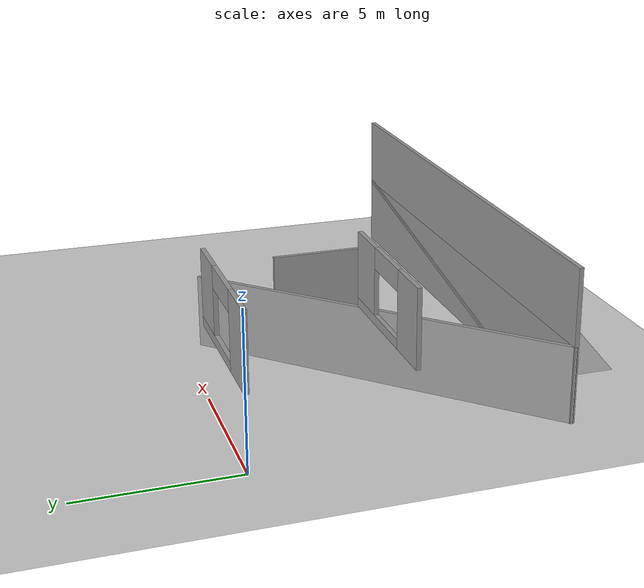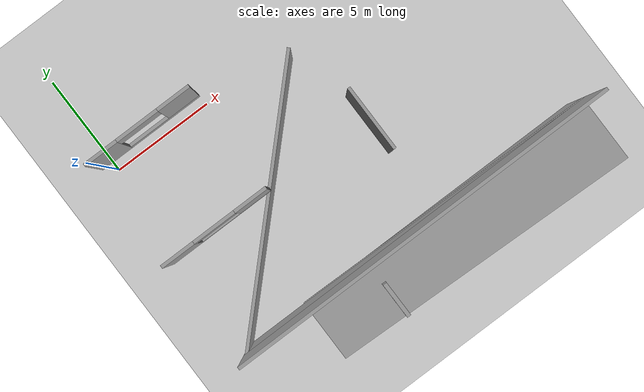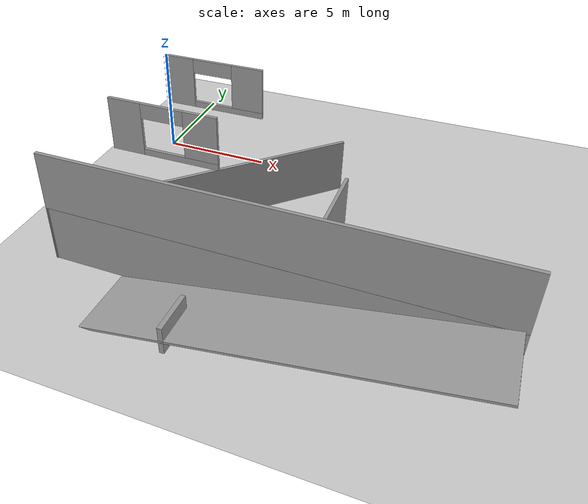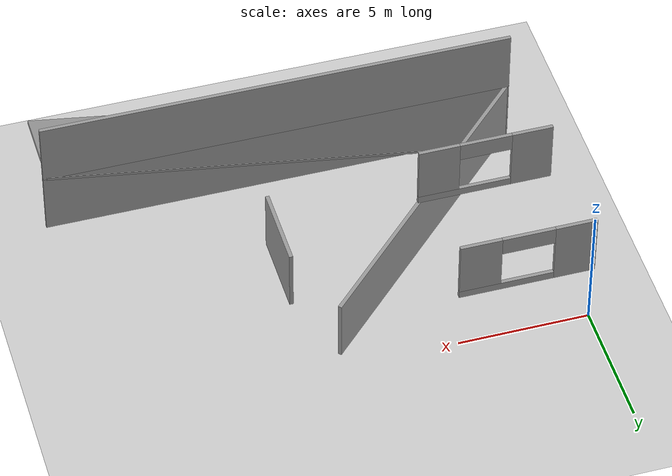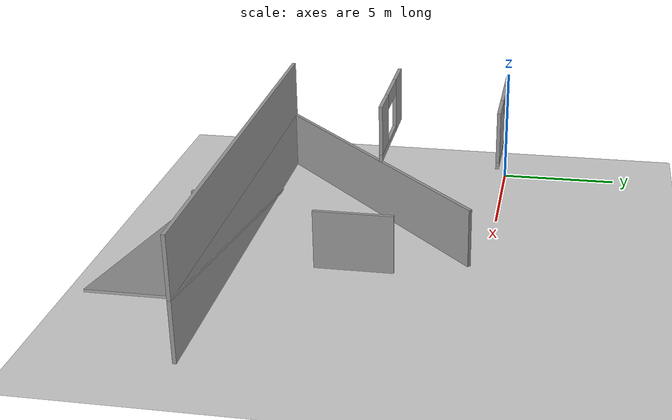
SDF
<sdf version="1.7">
 <world name="me5413_obstacle_world">
  <model name="ground_plane">
   <static>1</static>
   <link name="link">
    <collision name="collision">
     <geometry><plane><normal>0 0 1</normal><size>100 100</size></plane></geometry>
     <surface>
      <contact><collide_bitmask>65535</collide_bitmask></contact>
      <friction><ode><mu>100</mu><mu2>50</mu2></ode></friction>
     </surface>
    </collision>
    <visual name="visual">
     <cast_shadows>0</cast_shadows>
     <geometry><plane><normal>0 0 1</normal><size>100 100</size></plane></geometry>
     <material>
      <script><uri>file://media/materials/scripts/gazebo.material</uri><name>Gazebo/Grey</name></script>
     </material>
    </visual>
   </link>
  </model>
  <model name="smart_house_3_0">
   <link name="Wall_143">
    <pose>7.11602 -3.88398 0 0 -0 0.785398</pose>
    <inertial>
     <inertia><ixx>1</ixx><ixy>0</ixy><ixz>0</ixz><iyy>1</iyy><iyz>0</iyz><izz>1</izz></inertia>
     <mass>1</mass>
    </inertial>
    <visual name="Wall_143_Visual">
     <pose>0 0 1.25 0 -0 0</pose>
     <geometry><box><size>13.25 0.15 2.5</size></box></geometry>
     <material>
      <script><uri>file://media/materials/scripts/gazebo.material</uri><name>Gazebo/Grey</name></script>
      <ambient>1 1 1 1</ambient>
      <shader type="pixel"/>
     </material>
     <meta><layer>0</layer></meta>
    </visual>
    <collision name="Wall_143_Collision">
     <pose>0 0 1.25 0 -0 0</pose>
     <geometry><box><size>13.25 0.15 2.5</size></box></geometry>
     <surface>
      <friction>
       <ode><mu>1</mu><mu2>1</mu2><fdir1>0 0 0</fdir1><slip1>0</slip1><slip2>0</slip2></ode>
       <torsional>
        <coefficient>1</coefficient>
        <patch_radius>0</patch_radius>
        <surface_radius>0</surface_radius>
        <use_patch_radius>1</use_patch_radius>
        <ode><slip>0</slip></ode>
       </torsional>
      </friction>
      <bounce><restitution_coefficient>0</restitution_coefficient><threshold>1e+06</threshold></bounce>
      <contact>
       <collide_without_contact>0</collide_without_contact>
       <collide_without_contact_bitmask>1</collide_without_contact_bitmask>
       <collide_bitmask>1</collide_bitmask>
       <ode>
        <soft_cfm>0</soft_cfm>
        <soft_erp>0.2</soft_erp>
        <kp>1e+13</kp>
        <kd>1</kd>
        <max_vel>0.01</max_vel>
        <min_depth>0</min_depth>
       </ode>
       <bullet>
        <split_impulse>1</split_impulse>
        <split_impulse_penetration_threshold>-0.01</split_impulse_penetration_threshold>
        <soft_cfm>0</soft_cfm>
        <soft_erp>0.2</soft_erp>
        <kp>1e+13</kp>
        <kd>1</kd>
       </bullet>
      </contact>
     </surface>
    </collision>
   </link>
   <link name="Wall_258">
    <pose>11.4845 -8.51553 2.5 0 -0 0</pose>
    <inertial>
     <inertia><ixx>1</ixx><ixy>0</ixy><ixz>0</ixz><iyy>1</iyy><iyz>0</iyz><izz>1</izz></inertia>
     <mass>1</mass>
    </inertial>
    <visual name="Wall_258_Visual">
     <pose>0 0 1.25 0 -0 0</pose>
     <geometry><box><size>18.15 0.15 2.5</size></box></geometry>
     <material>
      <script><uri>file://media/materials/scripts/gazebo.material</uri><name>Gazebo/Grey</name></script>
      <ambient>1 1 1 1</ambient>
      <shader type="pixel"/>
     </material>
     <meta><layer>2</layer></meta>
    </visual>
    <collision name="Wall_258_Collision">
     <pose>0 0 1.25 0 -0 0</pose>
     <geometry><box><size>18.15 0.15 2.5</size></box></geometry>
     <surface>
      <friction>
       <ode><mu>1</mu><mu2>1</mu2><fdir1>0 0 0</fdir1><slip1>0</slip1><slip2>0</slip2></ode>
       <torsional>
        <coefficient>1</coefficient>
        <patch_radius>0</patch_radius>
        <surface_radius>0</surface_radius>
        <use_patch_radius>1</use_patch_radius>
        <ode><slip>0</slip></ode>
       </torsional>
      </friction>
      <bounce><restitution_coefficient>0</restitution_coefficient><threshold>1e+06</threshold></bounce>
      <contact>
       <collide_without_contact>0</collide_without_contact>
       <collide_without_contact_bitmask>1</collide_without_contact_bitmask>
       <collide_bitmask>1</collide_bitmask>
       <ode>
        <soft_cfm>0</soft_cfm>
        <soft_erp>0.2</soft_erp>
        <kp>1e+13</kp>
        <kd>1</kd>
        <max_vel>0.01</max_vel>
        <min_depth>0</min_depth>
       </ode>
       <bullet>
        <split_impulse>1</split_impulse>
        <split_impulse_penetration_threshold>-0.01</split_impulse_penetration_threshold>
        <soft_cfm>0</soft_cfm>
        <soft_erp>0.2</soft_erp>
        <kp>1e+13</kp>
        <kd>1</kd>
       </bullet>
      </contact>
     </surface>
    </collision>
   </link>
   <link name="Wall_290">
    <pose>4.98447 1.48447 2.5 0 -0 0</pose>
    <inertial>
     <inertia><ixx>1</ixx><ixy>0</ixy><ixz>0</ixz><iyy>1</iyy><iyz>0</iyz><izz>1</izz></inertia>
     <mass>1</mass>
    </inertial>
    <visual name="Wall_290_Visual_1">
     <pose>0.7875 0 0.15 0 -0 0</pose>
     <geometry><box><size>3.575 0.15 0.3</size></box></geometry>
     <material>
      <script><uri>file://media/materials/scripts/gazebo.material</uri><name>Gazebo/Grey</name></script>
      <ambient>1 1 1 1</ambient>
      <shader type="pixel"/>
     </material>
     <meta><layer>2</layer></meta>
    </visual>
    <visual name="Wall_290_Visual_0">
     <pose>-1.7875 0 1.25 0 -0 0</pose>
     <geometry><box><size>1.575 0.15 2.5</size></box></geometry>
     <material>
      <script><uri>file://media/materials/scripts/gazebo.material</uri><name>Gazebo/Grey</name></script>
      <ambient>1 1 1 1</ambient>
      <shader type="pixel"/>
     </material>
     <meta><layer>2</layer></meta>
    </visual>
    <visual name="Wall_290_Visual_2">
     <pose>1.7875 0 1.4 0 -0 0</pose>
     <geometry><box><size>1.575 0.15 2.2</size></box></geometry>
     <material>
      <script><uri>file://media/materials/scripts/gazebo.material</uri><name>Gazebo/Grey</name></script>
      <ambient>1 1 1 1</ambient>
      <shader type="pixel"/>
     </material>
     <meta><layer>2</layer></meta>
    </visual>
    <visual name="Wall_290_Visual_3">
     <pose>0 0 2.15 0 -0 0</pose>
     <geometry><box><size>2 0.15 0.7</size></box></geometry>
     <material>
      <script><uri>file://media/materials/scripts/gazebo.material</uri><name>Gazebo/Grey</name></script>
      <ambient>1 1 1 1</ambient>
      <shader type="pixel"/>
     </material>
     <meta><layer>2</layer></meta>
    </visual>
    <collision name="Wall_290_Collision_3">
     <pose>0 0 2.15 0 -0 0</pose>
     <geometry><box><size>2 0.15 0.7</size></box></geometry>
     <surface>
      <friction>
       <ode><mu>1</mu><mu2>1</mu2><fdir1>0 0 0</fdir1><slip1>0</slip1><slip2>0</slip2></ode>
       <torsional>
        <coefficient>1</coefficient>
        <patch_radius>0</patch_radius>
        <surface_radius>0</surface_radius>
        <use_patch_radius>1</use_patch_radius>
        <ode><slip>0</slip></ode>
       </torsional>
      </friction>
      <bounce><restitution_coefficient>0</restitution_coefficient><threshold>1e+06</threshold></bounce>
      <contact>
       <collide_without_contact>0</collide_without_contact>
       <collide_without_contact_bitmask>1</collide_without_contact_bitmask>
       <collide_bitmask>1</collide_bitmask>
       <ode>
        <soft_cfm>0</soft_cfm>
        <soft_erp>0.2</soft_erp>
        <kp>1e+13</kp>
        <kd>1</kd>
        <max_vel>0.01</max_vel>
        <min_depth>0</min_depth>
       </ode>
       <bullet>
        <split_impulse>1</split_impulse>
        <split_impulse_penetration_threshold>-0.01</split_impulse_penetration_threshold>
        <soft_cfm>0</soft_cfm>
        <soft_erp>0.2</soft_erp>
        <kp>1e+13</kp>
        <kd>1</kd>
       </bullet>
      </contact>
     </surface>
    </collision>
    <collision name="Wall_290_Collision_1">
     <pose>0.7875 0 0.15 0 -0 0</pose>
     <geometry><box><size>3.575 0.15 0.3</size></box></geometry>
     <surface>
      <friction>
       <ode><mu>1</mu><mu2>1</mu2><fdir1>0 0 0</fdir1><slip1>0</slip1><slip2>0</slip2></ode>
       <torsional>
        <coefficient>1</coefficient>
        <patch_radius>0</patch_radius>
        <surface_radius>0</surface_radius>
        <use_patch_radius>1</use_patch_radius>
        <ode><slip>0</slip></ode>
       </torsional>
      </friction>
      <bounce><restitution_coefficient>0</restitution_coefficient><threshold>1e+06</threshold></bounce>
      <contact>
       <collide_without_contact>0</collide_without_contact>
       <collide_without_contact_bitmask>1</collide_without_contact_bitmask>
       <collide_bitmask>1</collide_bitmask>
       <ode>
        <soft_cfm>0</soft_cfm>
        <soft_erp>0.2</soft_erp>
        <kp>1e+13</kp>
        <kd>1</kd>
        <max_vel>0.01</max_vel>
        <min_depth>0</min_depth>
       </ode>
       <bullet>
        <split_impulse>1</split_impulse>
        <split_impulse_penetration_threshold>-0.01</split_impulse_penetration_threshold>
        <soft_cfm>0</soft_cfm>
        <soft_erp>0.2</soft_erp>
        <kp>1e+13</kp>
        <kd>1</kd>
       </bullet>
      </contact>
     </surface>
    </collision>
    <collision name="Wall_290_Collision_2">
     <pose>1.7875 0 1.4 0 -0 0</pose>
     <geometry><box><size>1.575 0.15 2.2</size></box></geometry>
     <surface>
      <friction>
       <ode><mu>1</mu><mu2>1</mu2><fdir1>0 0 0</fdir1><slip1>0</slip1><slip2>0</slip2></ode>
       <torsional>
        <coefficient>1</coefficient>
        <patch_radius>0</patch_radius>
        <surface_radius>0</surface_radius>
        <use_patch_radius>1</use_patch_radius>
        <ode><slip>0</slip></ode>
       </torsional>
      </friction>
      <bounce><restitution_coefficient>0</restitution_coefficient><threshold>1e+06</threshold></bounce>
      <contact>
       <collide_without_contact>0</collide_without_contact>
       <collide_without_contact_bitmask>1</collide_without_contact_bitmask>
       <collide_bitmask>1</collide_bitmask>
       <ode>
        <soft_cfm>0</soft_cfm>
        <soft_erp>0.2</soft_erp>
        <kp>1e+13</kp>
        <kd>1</kd>
        <max_vel>0.01</max_vel>
        <min_depth>0</min_depth>
       </ode>
       <bullet>
        <split_impulse>1</split_impulse>
        <split_impulse_penetration_threshold>-0.01</split_impulse_penetration_threshold>
        <soft_cfm>0</soft_cfm>
        <soft_erp>0.2</soft_erp>
        <kp>1e+13</kp>
        <kd>1</kd>
       </bullet>
      </contact>
     </surface>
    </collision>
    <collision name="Wall_290_Collision_0">
     <pose>-1.7875 0 1.25 0 -0 0</pose>
     <geometry><box><size>1.575 0.15 2.5</size></box></geometry>
     <surface>
      <friction>
       <ode><mu>1</mu><mu2>1</mu2><fdir1>0 0 0</fdir1><slip1>0</slip1><slip2>0</slip2></ode>
       <torsional>
        <coefficient>1</coefficient>
        <patch_radius>0</patch_radius>
        <surface_radius>0</surface_radius>
        <use_patch_radius>1</use_patch_radius>
        <ode><slip>0</slip></ode>
       </torsional>
      </friction>
      <bounce><restitution_coefficient>0</restitution_coefficient><threshold>1e+06</threshold></bounce>
      <contact>
       <collide_without_contact>0</collide_without_contact>
       <collide_without_contact_bitmask>1</collide_without_contact_bitmask>
       <collide_bitmask>1</collide_bitmask>
       <ode>
        <soft_cfm>0</soft_cfm>
        <soft_erp>0.2</soft_erp>
        <kp>1e+13</kp>
        <kd>1</kd>
        <max_vel>0.01</max_vel>
        <min_depth>0</min_depth>
       </ode>
       <bullet>
        <split_impulse>1</split_impulse>
        <split_impulse_penetration_threshold>-0.01</split_impulse_penetration_threshold>
        <soft_cfm>0</soft_cfm>
        <soft_erp>0.2</soft_erp>
        <kp>1e+13</kp>
        <kd>1</kd>
       </bullet>
      </contact>
     </surface>
    </collision>
   </link>
   <link name="Wall_292">
    <pose>4.98447 -3.51553 2.5 0 -0 0</pose>
    <inertial>
     <inertia><ixx>1</ixx><ixy>0</ixy><ixz>0</ixz><iyy>1</iyy><iyz>0</iyz><izz>1</izz></inertia>
     <mass>1</mass>
    </inertial>
    <visual name="Wall_292_Visual_0">
     <pose>-1.7875 0 1.25 0 -0 0</pose>
     <geometry><box><size>1.575 0.15 2.5</size></box></geometry>
     <material>
      <script><uri>file://media/materials/scripts/gazebo.material</uri><name>Gazebo/Grey</name></script>
      <ambient>1 1 1 1</ambient>
      <shader type="pixel"/>
     </material>
     <meta><layer>2</layer></meta>
    </visual>
    <visual name="Wall_292_Visual_2">
     <pose>1.7875 0 1.4 0 -0 0</pose>
     <geometry><box><size>1.575 0.15 2.2</size></box></geometry>
     <material>
      <script><uri>file://media/materials/scripts/gazebo.material</uri><name>Gazebo/Grey</name></script>
      <ambient>1 1 1 1</ambient>
      <shader type="pixel"/>
     </material>
     <meta><layer>2</layer></meta>
    </visual>
    <visual name="Wall_292_Visual_3">
     <pose>0 0 2.15 0 -0 0</pose>
     <geometry><box><size>2 0.15 0.7</size></box></geometry>
     <material>
      <script><uri>file://media/materials/scripts/gazebo.material</uri><name>Gazebo/Grey</name></script>
      <ambient>1 1 1 1</ambient>
      <shader type="pixel"/>
     </material>
     <meta><layer>2</layer></meta>
    </visual>
    <visual name="Wall_292_Visual_1">
     <pose>0.7875 0 0.15 0 -0 0</pose>
     <geometry><box><size>3.575 0.15 0.3</size></box></geometry>
     <material>
      <script><uri>file://media/materials/scripts/gazebo.material</uri><name>Gazebo/Grey</name></script>
      <ambient>1 1 1 1</ambient>
      <shader type="pixel"/>
     </material>
     <meta><layer>2</layer></meta>
    </visual>
    <collision name="Wall_292_Collision_0">
     <pose>-1.7875 0 1.25 0 -0 0</pose>
     <geometry><box><size>1.575 0.15 2.5</size></box></geometry>
     <surface>
      <friction>
       <ode><mu>1</mu><mu2>1</mu2><fdir1>0 0 0</fdir1><slip1>0</slip1><slip2>0</slip2></ode>
       <torsional>
        <coefficient>1</coefficient>
        <patch_radius>0</patch_radius>
        <surface_radius>0</surface_radius>
        <use_patch_radius>1</use_patch_radius>
        <ode><slip>0</slip></ode>
       </torsional>
      </friction>
      <bounce><restitution_coefficient>0</restitution_coefficient><threshold>1e+06</threshold></bounce>
      <contact>
       <collide_without_contact>0</collide_without_contact>
       <collide_without_contact_bitmask>1</collide_without_contact_bitmask>
       <collide_bitmask>1</collide_bitmask>
       <ode>
        <soft_cfm>0</soft_cfm>
        <soft_erp>0.2</soft_erp>
        <kp>1e+13</kp>
        <kd>1</kd>
        <max_vel>0.01</max_vel>
        <min_depth>0</min_depth>
       </ode>
       <bullet>
        <split_impulse>1</split_impulse>
        <split_impulse_penetration_threshold>-0.01</split_impulse_penetration_threshold>
        <soft_cfm>0</soft_cfm>
        <soft_erp>0.2</soft_erp>
        <kp>1e+13</kp>
        <kd>1</kd>
       </bullet>
      </contact>
     </surface>
    </collision>
    <collision name="Wall_292_Collision_3">
     <pose>0 0 2.15 0 -0 0</pose>
     <geometry><box><size>2 0.15 0.7</size></box></geometry>
     <surface>
      <friction>
       <ode><mu>1</mu><mu2>1</mu2><fdir1>0 0 0</fdir1><slip1>0</slip1><slip2>0</slip2></ode>
       <torsional>
        <coefficient>1</coefficient>
        <patch_radius>0</patch_radius>
        <surface_radius>0</surface_radius>
        <use_patch_radius>1</use_patch_radius>
        <ode><slip>0</slip></ode>
       </torsional>
      </friction>
      <bounce><restitution_coefficient>0</restitution_coefficient><threshold>1e+06</threshold></bounce>
      <contact>
       <collide_without_contact>0</collide_without_contact>
       <collide_without_contact_bitmask>1</collide_without_contact_bitmask>
       <collide_bitmask>1</collide_bitmask>
       <ode>
        <soft_cfm>0</soft_cfm>
        <soft_erp>0.2</soft_erp>
        <kp>1e+13</kp>
        <kd>1</kd>
        <max_vel>0.01</max_vel>
        <min_depth>0</min_depth>
       </ode>
       <bullet>
        <split_impulse>1</split_impulse>
        <split_impulse_penetration_threshold>-0.01</split_impulse_penetration_threshold>
        <soft_cfm>0</soft_cfm>
        <soft_erp>0.2</soft_erp>
        <kp>1e+13</kp>
        <kd>1</kd>
       </bullet>
      </contact>
     </surface>
    </collision>
    <collision name="Wall_292_Collision_2">
     <pose>1.7875 0 1.4 0 -0 0</pose>
     <geometry><box><size>1.575 0.15 2.2</size></box></geometry>
     <surface>
      <friction>
       <ode><mu>1</mu><mu2>1</mu2><fdir1>0 0 0</fdir1><slip1>0</slip1><slip2>0</slip2></ode>
       <torsional>
        <coefficient>1</coefficient>
        <patch_radius>0</patch_radius>
        <surface_radius>0</surface_radius>
        <use_patch_radius>1</use_patch_radius>
        <ode><slip>0</slip></ode>
       </torsional>
      </friction>
      <bounce><restitution_coefficient>0</restitution_coefficient><threshold>1e+06</threshold></bounce>
      <contact>
       <collide_without_contact>0</collide_without_contact>
       <collide_without_contact_bitmask>1</collide_without_contact_bitmask>
       <collide_bitmask>1</collide_bitmask>
       <ode>
        <soft_cfm>0</soft_cfm>
        <soft_erp>0.2</soft_erp>
        <kp>1e+13</kp>
        <kd>1</kd>
        <max_vel>0.01</max_vel>
        <min_depth>0</min_depth>
       </ode>
       <bullet>
        <split_impulse>1</split_impulse>
        <split_impulse_penetration_threshold>-0.01</split_impulse_penetration_threshold>
        <soft_cfm>0</soft_cfm>
        <soft_erp>0.2</soft_erp>
        <kp>1e+13</kp>
        <kd>1</kd>
       </bullet>
      </contact>
     </surface>
    </collision>
    <collision name="Wall_292_Collision_1">
     <pose>0.7875 0 0.15 0 -0 0</pose>
     <geometry><box><size>3.575 0.15 0.3</size></box></geometry>
     <surface>
      <friction>
       <ode><mu>1</mu><mu2>1</mu2><fdir1>0 0 0</fdir1><slip1>0</slip1><slip2>0</slip2></ode>
       <torsional>
        <coefficient>1</coefficient>
        <patch_radius>0</patch_radius>
        <surface_radius>0</surface_radius>
        <use_patch_radius>1</use_patch_radius>
        <ode><slip>0</slip></ode>
       </torsional>
      </friction>
      <bounce><restitution_coefficient>0</restitution_coefficient><threshold>1e+06</threshold></bounce>
      <contact>
       <collide_without_contact>0</collide_without_contact>
       <collide_without_contact_bitmask>1</collide_without_contact_bitmask>
       <collide_bitmask>1</collide_bitmask>
       <ode>
        <soft_cfm>0</soft_cfm>
        <soft_erp>0.2</soft_erp>
        <kp>1e+13</kp>
        <kd>1</kd>
        <max_vel>0.01</max_vel>
        <min_depth>0</min_depth>
       </ode>
       <bullet>
        <split_impulse>1</split_impulse>
        <split_impulse_penetration_threshold>-0.01</split_impulse_penetration_threshold>
        <soft_cfm>0</soft_cfm>
        <soft_erp>0.2</soft_erp>
        <kp>1e+13</kp>
        <kd>1</kd>
       </bullet>
      </contact>
     </surface>
    </collision>
   </link>
   <link name="Wall_75">
    <pose>12.8037 -3.71128 0 0 0 -1.5708</pose>
    <inertial>
     <inertia><ixx>1</ixx><ixy>0</ixy><ixz>0</ixz><iyy>1</iyy><iyz>0</iyz><izz>1</izz></inertia>
     <mass>1</mass>
    </inertial>
    <visual name="Wall_75_Visual">
     <pose>0 0 1.25 0 -0 0</pose>
     <geometry><box><size>3.25 0.15 2.5</size></box></geometry>
     <material>
      <script><uri>file://media/materials/scripts/gazebo.material</uri><name>Gazebo/Grey</name></script>
      <ambient>1 1 1 1</ambient>
      <shader type="pixel"/>
     </material>
     <meta><layer>0</layer></meta>
    </visual>
    <collision name="Wall_75_Collision">
     <pose>0 0 1.25 0 -0 0</pose>
     <geometry><box><size>3.25 0.15 2.5</size></box></geometry>
     <surface>
      <friction>
       <ode><mu>1</mu><mu2>1</mu2><fdir1>0 0 0</fdir1><slip1>0</slip1><slip2>0</slip2></ode>
       <torsional>
        <coefficient>1</coefficient>
        <patch_radius>0</patch_radius>
        <surface_radius>0</surface_radius>
        <use_patch_radius>1</use_patch_radius>
        <ode><slip>0</slip></ode>
       </torsional>
      </friction>
      <bounce><restitution_coefficient>0</restitution_coefficient><threshold>1e+06</threshold></bounce>
      <contact>
       <collide_without_contact>0</collide_without_contact>
       <collide_without_contact_bitmask>1</collide_without_contact_bitmask>
       <collide_bitmask>1</collide_bitmask>
       <ode>
        <soft_cfm>0</soft_cfm>
        <soft_erp>0.2</soft_erp>
        <kp>1e+13</kp>
        <kd>1</kd>
        <max_vel>0.01</max_vel>
        <min_depth>0</min_depth>
       </ode>
       <bullet>
        <split_impulse>1</split_impulse>
        <split_impulse_penetration_threshold>-0.01</split_impulse_penetration_threshold>
        <soft_cfm>0</soft_cfm>
        <soft_erp>0.2</soft_erp>
        <kp>1e+13</kp>
        <kd>1</kd>
       </bullet>
      </contact>
     </surface>
    </collision>
   </link>
   <link name="Wall_84">
    <pose>11.4845 -8.51553 0 0 -0 0</pose>
    <inertial>
     <inertia><ixx>1</ixx><ixy>0</ixy><ixz>0</ixz><iyy>1</iyy><iyz>0</iyz><izz>1</izz></inertia>
     <mass>1</mass>
    </inertial>
    <visual name="Wall_84_Visual">
     <pose>0 0 1.25 0 -0 0</pose>
     <geometry><box><size>18.15 0.15 2.5</size></box></geometry>
     <material>
      <script><uri>file://media/materials/scripts/gazebo.material</uri><name>Gazebo/Grey</name></script>
      <ambient>1 1 1 1</ambient>
      <shader type="pixel"/>
     </material>
     <meta><layer>0</layer></meta>
    </visual>
    <collision name="Wall_84_Collision">
     <pose>0 0 1.25 0 -0 0</pose>
     <geometry><box><size>18.15 0.15 2.5</size></box></geometry>
     <surface>
      <friction>
       <ode><mu>1</mu><mu2>1</mu2><fdir1>0 0 0</fdir1><slip1>0</slip1><slip2>0</slip2></ode>
       <torsional>
        <coefficient>1</coefficient>
        <patch_radius>0</patch_radius>
        <surface_radius>0</surface_radius>
        <use_patch_radius>1</use_patch_radius>
        <ode><slip>0</slip></ode>
       </torsional>
      </friction>
      <bounce><restitution_coefficient>0</restitution_coefficient><threshold>1e+06</threshold></bounce>
      <contact>
       <collide_without_contact>0</collide_without_contact>
       <collide_without_contact_bitmask>1</collide_without_contact_bitmask>
       <collide_bitmask>1</collide_bitmask>
       <ode>
        <soft_cfm>0</soft_cfm>
        <soft_erp>0.2</soft_erp>
        <kp>1e+13</kp>
        <kd>1</kd>
        <max_vel>0.01</max_vel>
        <min_depth>0</min_depth>
       </ode>
       <bullet>
        <split_impulse>1</split_impulse>
        <split_impulse_penetration_threshold>-0.01</split_impulse_penetration_threshold>
        <soft_cfm>0</soft_cfm>
        <soft_erp>0.2</soft_erp>
        <kp>1e+13</kp>
        <kd>1</kd>
       </bullet>
      </contact>
     </surface>
    </collision>
   </link>
   <link name="link_0">
    <inertial>
     <mass>1</mass>
     <inertia>
      <ixx>0.166667</ixx>
      <ixy>0</ixy>
      <ixz>0</ixz>
      <iyy>0.166667</iyy>
      <iyz>0</iyz>
      <izz>0.166667</izz>
     </inertia>
    </inertial>
    <pose>12.9 -10 1.226 0 -0.174533 0</pose>
    <visual name="visual">
     <geometry><box><size>15.265 3.2 0.1</size></box></geometry>
     <material>
      <lighting>1</lighting>
      <script><uri>file://media/materials/scripts/gazebo.material</uri><name>Gazebo/Grey</name></script>
      <shader type="pixel"><normal_map>__default__</normal_map></shader>
      <ambient>0.3 0.3 0.3 1</ambient>
      <diffuse>0.7 0.7 0.7 1</diffuse>
      <specular>0.01 0.01 0.01 1</specular>
      <emissive>0 0 0 1</emissive>
     </material>
    </visual>
    <collision name="collision">
     <geometry><box><size>15.265 3.2 0.1</size></box></geometry>
     <surface>
      <friction>
       <ode><mu>1</mu><mu2>1</mu2><fdir1>0 0 0</fdir1><slip1>0</slip1><slip2>0</slip2></ode>
       <torsional>
        <coefficient>1</coefficient>
        <patch_radius>0</patch_radius>
        <surface_radius>0</surface_radius>
        <use_patch_radius>1</use_patch_radius>
        <ode><slip>0</slip></ode>
       </torsional>
      </friction>
      <bounce><restitution_coefficient>0</restitution_coefficient><threshold>1e+06</threshold></bounce>
      <contact>
       <collide_without_contact>0</collide_without_contact>
       <collide_without_contact_bitmask>1</collide_without_contact_bitmask>
       <collide_bitmask>1</collide_bitmask>
       <ode>
        <soft_cfm>0</soft_cfm>
        <soft_erp>0.2</soft_erp>
        <kp>1e+13</kp>
        <kd>1</kd>
        <max_vel>0.01</max_vel>
        <min_depth>0</min_depth>
       </ode>
       <bullet>
        <split_impulse>1</split_impulse>
        <split_impulse_penetration_threshold>-0.01</split_impulse_penetration_threshold>
        <soft_cfm>0</soft_cfm>
        <soft_erp>0.2</soft_erp>
        <kp>1e+13</kp>
        <kd>1</kd>
       </bullet>
      </contact>
     </surface>
    </collision>
   </link>
   <link name="link_1">
    <inertial>
     <mass>1</mass>
     <inertia>
      <ixx>0.166667</ixx>
      <ixy>0</ixy>
      <ixz>0</ixz>
      <iyy>0.166667</iyy>
      <iyz>0</iyz>
      <izz>0.166667</izz>
     </inertia>
    </inertial>
    <pose>9 -10.7 0.6 0 -0 0</pose>
    <visual name="visual">
     <geometry><box><size>0.2 1.8 1.2</size></box></geometry>
     <material>
      <lighting>1</lighting>
      <script><uri>file://media/materials/scripts/gazebo.material</uri><name>Gazebo/Grey</name></script>
      <shader type="pixel"><normal_map>__default__</normal_map></shader>
      <ambient>0.3 0.3 0.3 1</ambient>
      <diffuse>0.7 0.7 0.7 1</diffuse>
      <specular>0.01 0.01 0.01 1</specular>
      <emissive>0 0 0 1</emissive>
     </material>
    </visual>
    <collision name="collision">
     <geometry><box><size>0.2 1.8 1.2</size></box></geometry>
     <surface>
      <friction>
       <ode><mu>1</mu><mu2>1</mu2><fdir1>0 0 0</fdir1><slip1>0</slip1><slip2>0</slip2></ode>
       <torsional>
        <coefficient>1</coefficient>
        <patch_radius>0</patch_radius>
        <surface_radius>0</surface_radius>
        <use_patch_radius>1</use_patch_radius>
        <ode><slip>0</slip></ode>
       </torsional>
      </friction>
      <bounce><restitution_coefficient>0</restitution_coefficient><threshold>1e+06</threshold></bounce>
      <contact>
       <collide_without_contact>0</collide_without_contact>
       <collide_without_contact_bitmask>1</collide_without_contact_bitmask>
       <collide_bitmask>1</collide_bitmask>
       <ode>
        <soft_cfm>0</soft_cfm>
        <soft_erp>0.2</soft_erp>
        <kp>1e+13</kp>
        <kd>1</kd>
        <max_vel>0.01</max_vel>
        <min_depth>0</min_depth>
       </ode>
       <bullet>
        <split_impulse>1</split_impulse>
        <split_impulse_penetration_threshold>-0.01</split_impulse_penetration_threshold>
        <soft_cfm>0</soft_cfm>
        <soft_erp>0.2</soft_erp>
        <kp>1e+13</kp>
        <kd>1</kd>
       </bullet>
      </contact>
     </surface>
    </collision>
   </link>
   <static>1</static>
   <pose>-2.5 -1.5 0 0 -0 0</pose>
  </model>
 </world>
</sdf>
